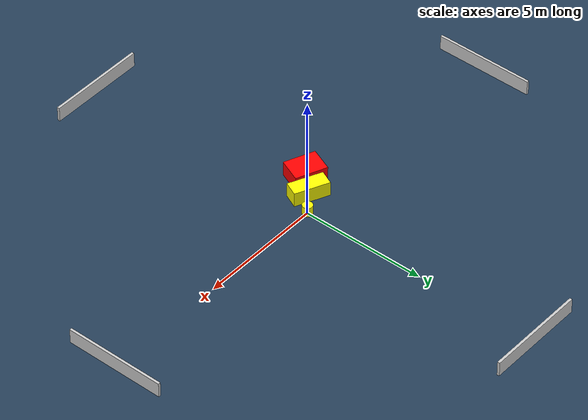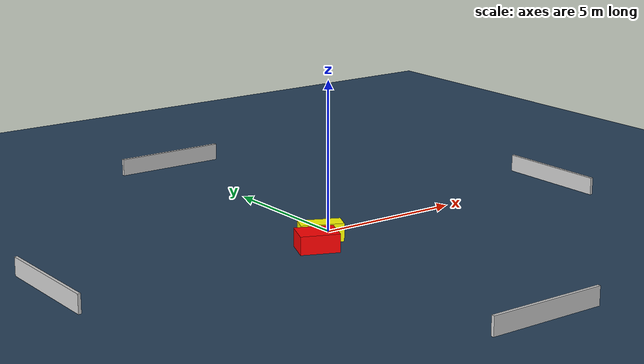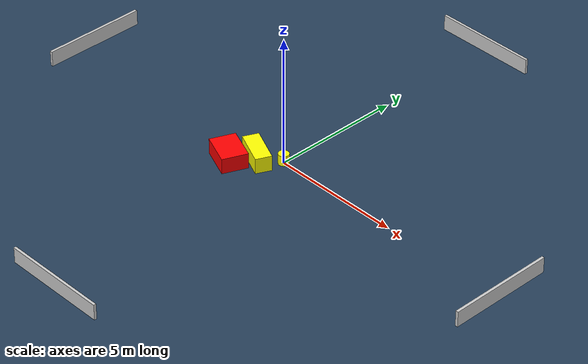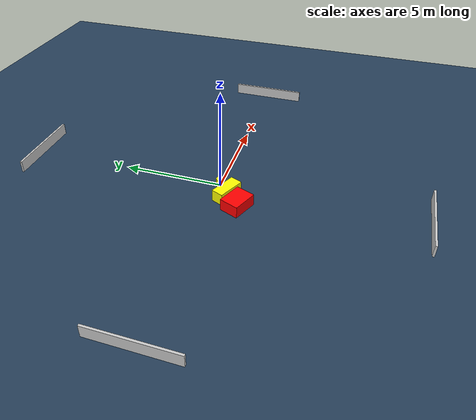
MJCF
<?xml version="1.0" ?>
<mujoco model="generated_environment">
  <option timestep="0.01" integrator="RK4" cone="elliptic"/>
  <default>
    <geom density="1"/>
  </default>
  <asset>
    <texture builtin="gradient" height="3072" name="skybox" rgb1="0.3 0.5 0.7" rgb2="0 0 0" type="skybox" width="512"/>
    <texture builtin="checker" height="300" name="groundplane" rgb1="0.2 0.3 0.4" rgb2="0.1 0.2 0.3" type="2d" width="300"/>
    <material name="groundplane" reflectance="0.2" texrepeat="5 5" texture="groundplane"/>
  </asset>
  <worldbody>
    <light dir="0 0 -1" directional="true" pos="0 0 1.5"/>
    <geom condim="3" friction="0.5 0.005 0.001" material="groundplane" name="floor" pos="0 0 0" size="0 0 0.05" type="plane"/>
    <body name="walls">
      <geom name="wall_1" condim="4" pos="-10.0 0.0 0.3" rgba="0.800000011920929 0.800000011920929 0.800000011920929 1.0" size="0.05 2.0 0.3" type="box"/>
      <geom name="wall_2" condim="4" pos="10.0 0.0 0.3" rgba="0.800000011920929 0.800000011920929 0.800000011920929 1.0" size="0.05 2.0 0.3" type="box"/>
      <geom name="wall_3" condim="4" pos="0.0 -10.0 0.3" rgba="0.800000011920929 0.800000011920929 0.800000011920929 1.0" size="2.0 0.05 0.3" type="box"/>
      <geom name="wall_4" condim="4" pos="0.0 10.0 0.3" rgba="0.800000011920929 0.800000011920929 0.800000011920929 1.0" size="2.0 0.05 0.3" type="box"/>
    </body>
    <body name="robot">
      <joint name="joint_x" type="slide" pos="0 0 0" axis="1 0 0"/>
      <joint name="joint_y" type="slide" pos="0 0 0" axis="0 1 0"/>
      <geom name="robot" type="cylinder" pos="0.0 0.0 0.2" size="0.2 0.2 0.0" mass="5.0" friction="1.0 0.005 0.0001" condim="4" rgba="1.0 1.0 0.0 1.0"/>
    </body>
    <body name="obstacle_1_movable">
      <geom name="obstacle_1_movable" condim="4" pos="-0.7263257377831606 -0.5587028186516587 0.3" euler="0 0 155.5139230158303" friction="0.0 0.005 0.001" rgba="1.0 1.0 0.0 1.0" size="0.7047559321421724 0.303113651082878 0.3" type="box" mass="0.1"/>
      <joint type="free"/>
    </body>
    <body name="obstacle_2_static">
      <geom name="obstacle_2_static" condim="4" pos="-1.383213815182629 -1.2622902979594164 0.3" euler="0 0 247.48761353831256" friction="0.0 0.005 0.001" rgba="1.0 0.0 0.0 1.0" size="0.4856709410027711 0.6409088303349186 0.3" type="box"/>
    </body>
  </worldbody>
  <actuator>
    <motor name="actuator_x" joint="joint_x" gear="1" ctrlrange="-1 1"/>
    <motor name="actuator_y" joint="joint_y" gear="1" ctrlrange="-1 1"/>
  </actuator>
</mujoco>
